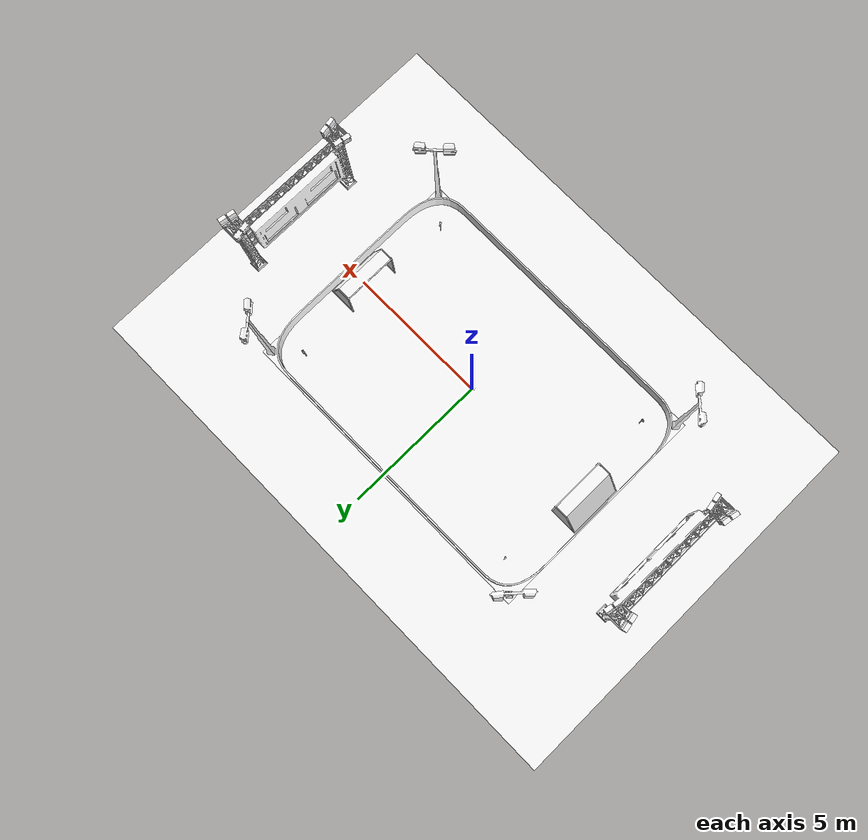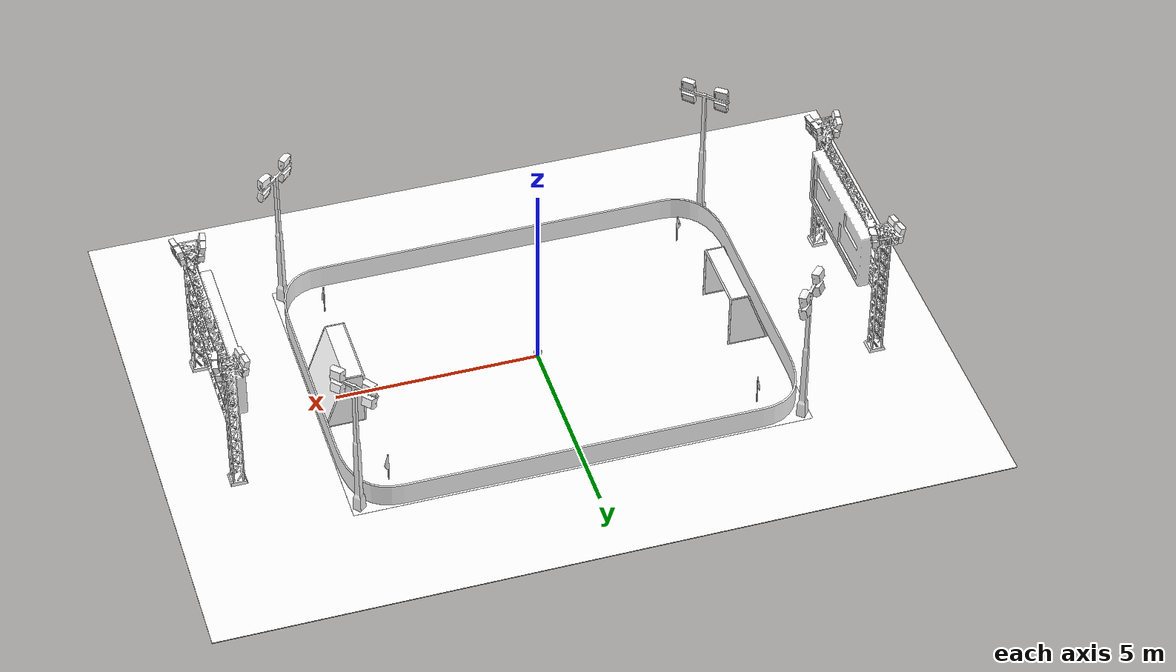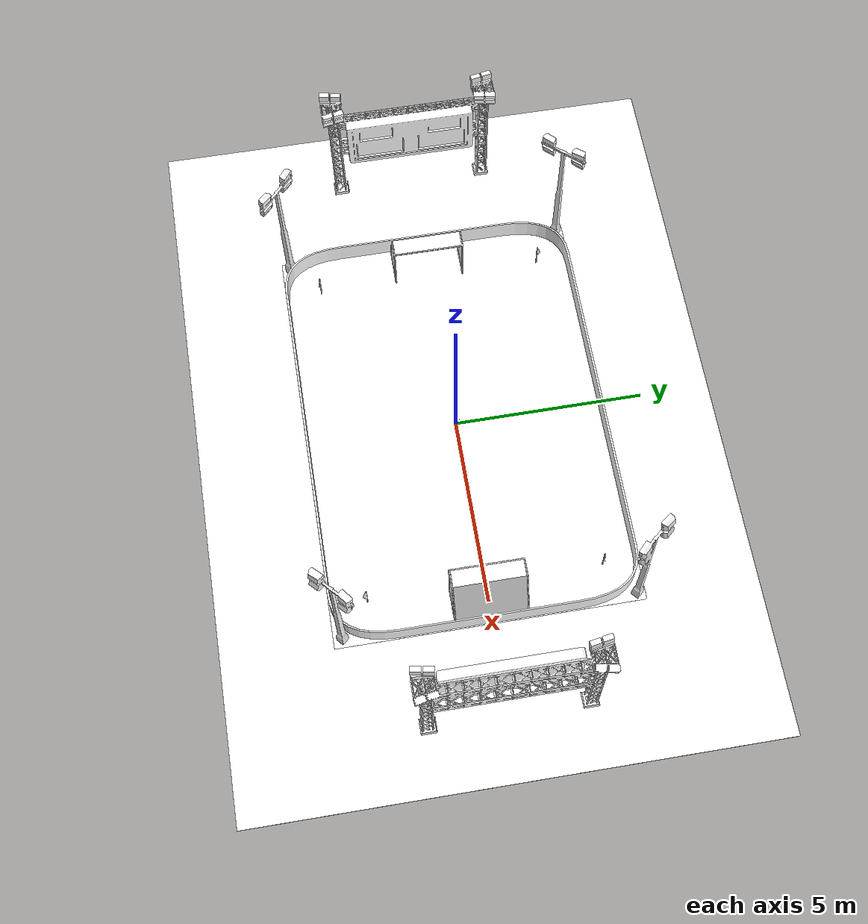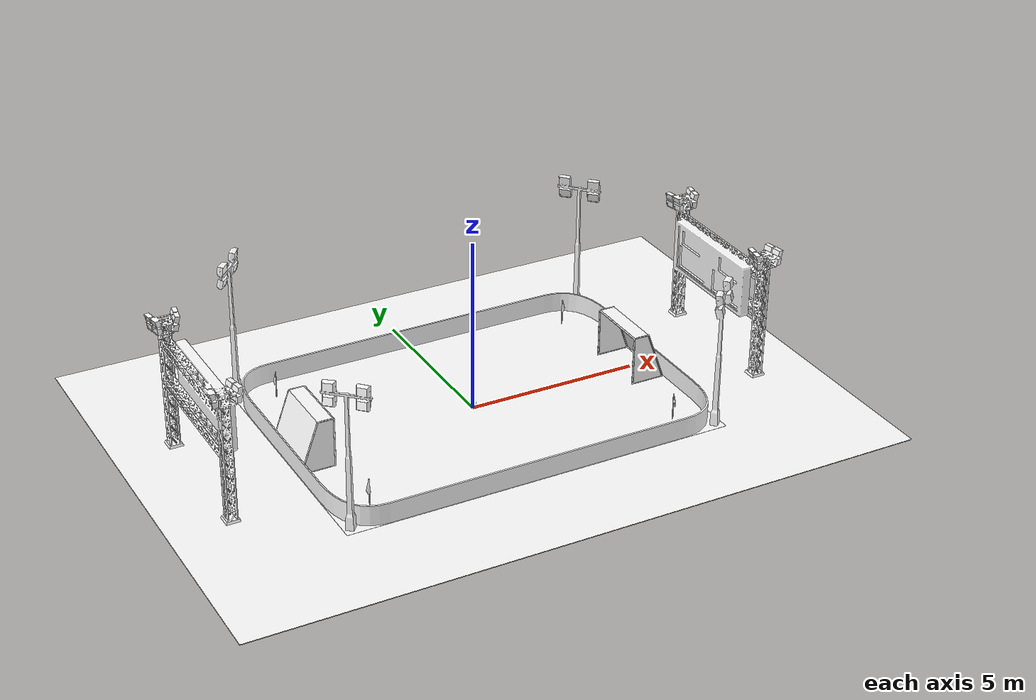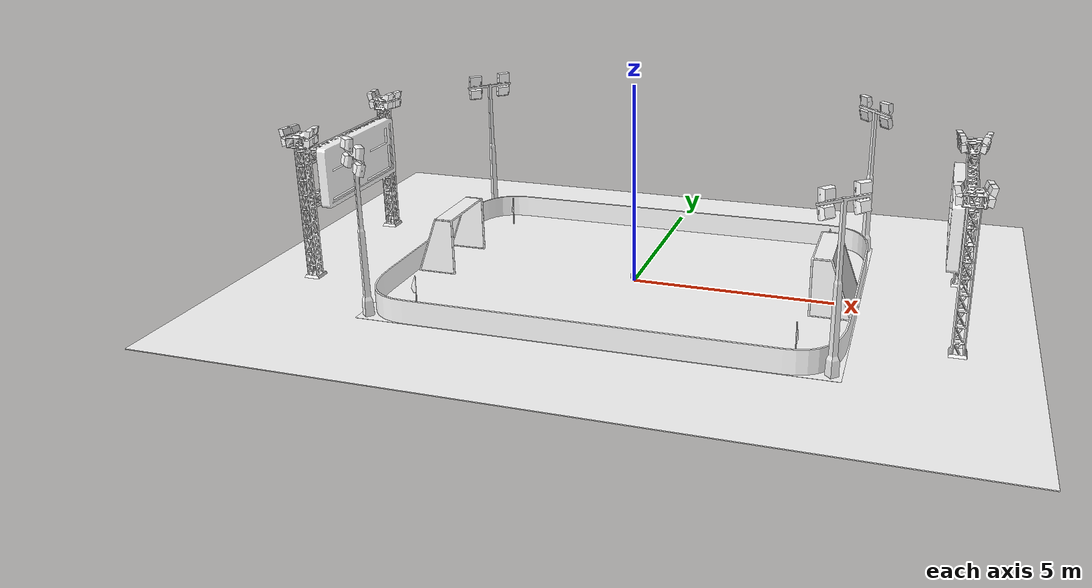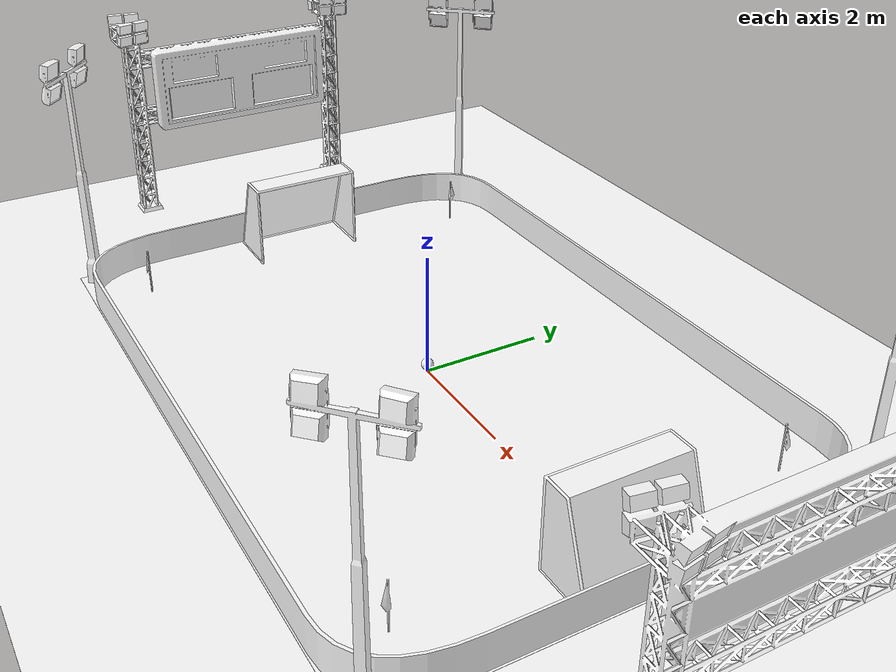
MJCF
<?xml version="1.0" encoding="utf-8"?>
<mujoco>
  <compiler autolimits="true" angle="degree" assetdir="assets" />
  <option timestep="0.005" density="1.2" viscosity="0.00002" />
  <visual>
    <headlight ambient="0.0 0.0 0.0" diffuse="0.0 0.0 0.0" specular="0.0 0.0 0.0" />
  </visual>
  <asset>
    <texture type="2d" colorspace="sRGB" name="Robot_Footballstadium" file="Robot_Footballstadium.png" />
    <texture type="2d" colorspace="sRGB" name="Robot_Floor" file="Robot_Floor.png" />
    <texture type="2d" colorspace="sRGB" name="Robot_AD" file="Robot_AD.png" />
    <texture type="2d" colorspace="sRGB" name="Robot_Football" file="Robot_Football.png" />
    <texture type="2d" colorspace="sRGB" name="Robot_Scoreboard" file="Robot_Scoreboard.png" />
    <texture type="2d" colorspace="sRGB" name="Robot_Scoreboard_emit" file="Robot_Scoreboard_emit.png" />
    <texture type="2d" colorspace="sRGB" name="Robot_NET" file="Robot_NET.png" />
    <texture type="2d" colorspace="sRGB" name="Robot_Footballstadium_emit" file="Robot_Footballstadium_emit.png" />
    <material name="Material #151" rgba="0.9999999999999999 0.9999999999999999 0.9999999999999999 1.0" reflectance="0.5" roughness="0.5" metallic="0.0">
      <layer texture="Robot_Footballstadium" role="rgb" />
    </material>
    <material name="Material #124" rgba="0.9999999999999999 0.9999999999999999 0.9999999999999999 1.0" reflectance="0.5" roughness="0.5" metallic="0.0">
      <layer texture="Robot_Floor" role="rgb" />
    </material>
    <material name="Material #147" rgba="0.9999999999999999 0.9999999999999999 0.9999999999999999 1.0" reflectance="0.5" roughness="0.5" metallic="0.0">
      <layer texture="Robot_AD" role="rgb" />
    </material>
    <material name="Material #149" rgba="0.9999999999999999 0.9999999999999999 0.9999999999999999 1.0" reflectance="0.5" roughness="0.5" metallic="0.0">
      <layer texture="Robot_Football" role="rgb" />
    </material>
    <material name="Material #127" rgba="0.9999999999999999 0.9999999999999999 0.9999999999999999 1.0" reflectance="0.5" roughness="0.5" metallic="0.0" emission="1.0 1.0 1.0 1.0" emissionintensity="2.0">
      <layer texture="Robot_Scoreboard" role="rgb" />
      <layer texture="Robot_Scoreboard_emit" role="emissive" />
    </material>
    <material name="Material #121" rgba="0.9999999999999999 0.9999999999999999 0.9999999999999999 0.8999999761581421" reflectance="0.5" roughness="0.5" metallic="0.0" texuniform="true" texrepeat="4.0 4.0">
      <layer texture="Robot_NET" role="rgba" />
    </material>
    <material name="Material #144" rgba="0.9999999999999999 0.9999999999999999 0.9999999999999999 1.0" reflectance="0.5" roughness="0.6000000238418579" metallic="0.0" emission="1.0 1.0 1.0 1.0" emissionintensity="2.0">
      <layer texture="Robot_Footballstadium" role="rgb" />
      <layer texture="Robot_Footballstadium_emit" role="emissive" />
    </material>
    <mesh name="Robot_Goal" file="Robot_Goal.obj" />
    <mesh name="Robot_Floor" file="Robot_Floor.obj" />
    <mesh name="Robot_AD" file="Robot_AD.obj" />
    <mesh name="Robot_Football" file="Robot_Football.obj" />
    <!-- Larger match ball: scaled football mesh (same asset as Robot_Football). To use exported STL instead, replace with file="Soccer_Ball_Optimized.stl" scale="1 1 1" from 球变大版本.xml. -->
    <mesh name="Soccer_Ball_Optimized" file="Robot_Football.obj" scale="1.45 1.45 1.45" />
    <mesh name="Robot_Scoreboard" file="Robot_Scoreboard.obj" />
    <mesh name="Robot_NET" file="Robot_NET.obj" />
    <mesh name="Robot_LED" file="Robot_LED.obj" />
    <mesh name="Robot_Footballstadium" file="Robot_Footballstadium.obj" />
    <mesh name="Corner_Flag" file="Corner_Flag.obj" />
  </asset>
  <worldbody>
    <geom name="pitch" pos="0 0 0" size="6 4.5 1" type="plane" contype="0" conaffinity="0" rgba="0.18 0.45 0.18 1" />
    <light name="LIT_Spot" pos="-5.257499694824219 3.562469005584717 3.8595826625823975" dir="0.6123724579811096 -0.6123724579811096 -0.4999999701976776" type="spot" diffuse="1.0 1.0 1.0" intensity="10867.14399363564" range="40.0" cutoff="42.49999833675809" innerangle="36.12499833292465" castshadow="true" mode="fixed" />
    <light name="LIT_Spot_001.004" pos="5.257500171661377 -3.562469959259033 3.8595826625823975" dir="-0.6123724579811096 0.6123724579811096 -0.4999999701976776" type="spot" diffuse="1.0 1.0 1.0" intensity="10867.14399363564" range="40.0" cutoff="42.49999833675809" innerangle="36.12499833292465" castshadow="true" mode="fixed" />
    <light name="LIT_Spot_002" pos="5.257500171661377 3.562469005584717 3.8595826625823975" dir="-0.6123724579811096 -0.6123724579811096 -0.4999999701976776" type="spot" diffuse="1.0 1.0 1.0" intensity="10867.14399363564" range="40.0" cutoff="42.49999833675809" innerangle="36.12499833292465" castshadow="true" mode="fixed" />
    <light name="LIT_Spot_003" pos="-5.257500171661377 -3.562469959259033 3.8595826625823975" dir="0.6123724579811096 0.6123724579811096 -0.4999999701976776" type="spot" diffuse="1.0 1.0 1.0" intensity="10867.14399363564" range="40.0" cutoff="42.49999833675809" innerangle="36.12499833292465" castshadow="true" mode="fixed" />
    <light name="LIT_Spot_001" pos="-7.476397514343262 1.9972071647644043 3.6919474601745605" dir="0.963287353515625 -0.2047530561685562 -0.17364822328090668" type="spot" diffuse="1.0 1.0 1.0" intensity="21734.28798727128" range="40.0" cutoff="60.000001669652114" innerangle="51.00000106157642" castshadow="true" mode="fixed" />
    <light name="LIT_Spot_001_001" pos="-7.476397514343262 -1.9972081184387207 3.6919474601745605" dir="0.963287353515625 0.2047530561685562 -0.17364822328090668" type="spot" diffuse="1.0 1.0 1.0" intensity="21734.28798727128" range="40.0" cutoff="60.000001669652114" innerangle="51.00000106157642" castshadow="true" mode="fixed" />
    <light name="LIT_Spot_001_002" pos="7.4763994216918945 1.9972071647644043 3.6919474601745605" dir="-0.963287353515625 -0.2047530561685562 -0.17364822328090668" type="spot" diffuse="1.0 1.0 1.0" intensity="21734.28798727128" range="40.0" cutoff="60.000001669652114" innerangle="51.00000106157642" castshadow="true" mode="fixed" />
    <light name="LIT_Spot_001_003" pos="7.4763994216918945 -1.9972081184387207 3.6919474601745605" dir="-0.963287353515625 0.2047530561685562 -0.17364822328090668" type="spot" diffuse="1.0 1.0 1.0" intensity="21734.28798727128" range="40.0" cutoff="60.000001669652114" innerangle="51.00000106157642" castshadow="true" mode="fixed" />
    <geom name="GEO_Robot_Goal" pos="0.0 0.0 0.0" quat="1.0 0.0 0.0 0.0" type="mesh" mesh="Robot_Goal" material="Material #151" contype="0" conaffinity="0" />
    <geom name="GEO_Robot_Floor" pos="0.0 0.0 0.0" quat="1.0 0.0 0.0 0.0" type="mesh" mesh="Robot_Floor" material="Material #124" contype="0" conaffinity="0" />
    <geom name="GEO_Robot_AD" pos="0.0 0.0 0.0" quat="1.0 0.0 0.0 0.0" type="mesh" mesh="Robot_AD" material="Material #147" contype="0" conaffinity="0" />
    <geom name="GEO_Robot_Scoreboard" pos="0.0 0.0 0.0" quat="1.0 0.0 0.0 0.0" type="mesh" mesh="Robot_Scoreboard" material="Material #127" contype="0" conaffinity="0" />
    <geom name="GEO_Robot_NET" pos="0.0 0.0 0.0" quat="1.0 0.0 0.0 0.0" type="mesh" mesh="Robot_NET" material="Material #121" contype="0" conaffinity="0" />
    <geom name="GEO_Robot_LED" pos="0.0 0.0 0.0" quat="1.0 0.0 0.0 0.0" type="mesh" mesh="Robot_LED" material="Material #144" contype="0" conaffinity="0" />
    <geom name="GEO_Robot_Footballstadium" pos="0.0 0.0 0.0" quat="1.0 0.0 0.0 0.0" type="mesh" mesh="Robot_Footballstadium" material="Material #144" contype="0" conaffinity="0" />
    <geom name="COL_Collider" pos="0.0 0.0 0.014369922690093517" quat="1.0 0.0 0.0 0.0" type="box" size="6.0 4.5 0.009999999776482582" group="3" />
    <geom name="COL_Cube" pos="-0.013669848442077637 3.847886562347412 0.29789090156555176" quat="1.0 0.0 0.0 0.0" type="box" size="4.367038249969482 0.025640010833740234 0.3017556667327881" group="3" />
    <geom name="COL_Cube_001" pos="0.0035172700881958008 -3.9452831745147705 0.29848408699035645" quat="1.0 0.0 0.0 0.0" type="box" size="4.367038249969482 0.025640010833740234 0.3017556667327881" group="3" />
    <geom name="COL_Cube_002" pos="5.543219566345215 -0.048734188079833984 0.2978677749633789" quat="1.0 0.0 0.0 0.0" type="box" size="0.018661975860595703 2.274294376373291 0.3017556667327881" group="3" />
    <geom name="COL_Cube_003" pos="-5.553401947021484 -0.048734188079833984 0.2978677749633789" quat="1.0 0.0 0.0 0.0" type="box" size="0.018661975860595703 2.274294376373291 0.3017556667327881" group="3" />
    <geom name="COL_Cube_004" pos="5.505679130554199 2.580112934112549 0.2978910207748413" quat="0.998615026473999 0.0 0.0 0.05261220782995224" type="box" size="0.018661975860595703 0.3584986925125122 0.3017556667327881" group="3" />
    <geom name="COL_Cube_005" pos="5.3816351890563965 3.1466293334960938 0.2978910207748413" quat="0.9813403487205505 0.0 0.0 0.19227883219718933" type="box" size="0.018661973997950554 0.23225754499435425 0.3017556667327881" group="3" />
    <geom name="COL_Cube_006" pos="4.996574401855469 3.657963752746582 0.2978910207748413" quat="0.8841893672943115 0.0 0.0 0.4671286642551422" type="box" size="0.018661975860595703 0.1792493462562561 0.3017556667327881" group="3" />
    <geom name="COL_Cube_007" pos="4.606194972991943 3.7983238697052 0.2978910207748413" quat="0.7639055848121643 0.0 0.0 0.6453279852867126" type="box" size="0.018661973997950554 0.25326916575431824 0.3017556667327881" group="3" />
    <geom name="COL_Cube_008" pos="5.218405246734619 3.4592020511627197 0.2978910207748413" quat="0.9469920992851257 0.0 0.0 0.32125675678253174" type="box" size="0.018661977723240852 0.12827935814857483 0.3017556667327881" group="3" />
    <geom name="COL_Cube_009" pos="-5.515832901000977 -2.6775097846984863 0.2984839677810669" quat="0.05261237174272537 -0.0 -0.0 -0.998615026473999" type="box" size="0.018661973997950554 0.3584986627101898 0.3017556667327881" group="3" />
    <geom name="COL_Cube_010" pos="-5.391788005828857 -3.2440261840820312 0.2984839677810669" quat="0.1922789067029953 -0.0 -0.0 -0.9813402891159058" type="box" size="0.018661975860595703 0.23225755989551544 0.3017556667327881" group="3" />
    <geom name="COL_Cube_011" pos="-5.006728172302246 -3.7553606033325195 0.2984839677810669" quat="0.4671289324760437 -0.0 -0.0 -0.884189248085022" type="box" size="0.018661973997950554 0.1792493313550949 0.3017556667327881" group="3" />
    <geom name="COL_Cube_012" pos="-4.616347789764404 -3.8957207202911377 0.2984839677810669" quat="0.6453282237052917 -0.0 -0.0 -0.76390540599823" type="box" size="0.018661973997950554 0.25326916575431824 0.3017556667327881" group="3" />
    <geom name="COL_Cube_013" pos="-5.22855806350708 -3.5565989017486572 0.2984839677810669" quat="0.3212569057941437 -0.0 -0.0 -0.946992039680481" type="box" size="0.018661977723240852 0.12827935814857483 0.3017556667327881" group="3" />
    <geom name="COL_Cube_014" pos="5.515832901000977 -2.6775097846984863 0.2984839677810669" quat="0.05261477455496788 0.0 0.0 0.9986149072647095" type="box" size="0.018661975860595703 0.3584986925125122 0.3017556667327881" group="3" />
    <geom name="COL_Cube_015" pos="5.391788005828857 -3.2440261840820312 0.2984839677810669" quat="0.19228225946426392 0.0 0.0 0.981339693069458" type="box" size="0.018661973997950554 0.23225754499435425 0.3017556667327881" group="3" />
    <geom name="COL_Cube_016" pos="5.006728172302246 -3.7553606033325195 0.2984839677810669" quat="0.46712756156921387 0.0 0.0 0.8841899633407593" type="box" size="0.018661973997950554 0.1792493313550949 0.3017556667327881" group="3" />
    <geom name="COL_Cube_017" pos="4.616347789764404 -3.8957207202911377 0.2984839677810669" quat="0.6453310251235962 0.0 0.0 0.763903021812439" type="box" size="0.018661973997950554 0.25326916575431824 0.3017556667327881" group="3" />
    <geom name="COL_Cube_018" pos="5.22855806350708 -3.5565989017486572 0.2984839677810669" quat="0.321257621049881 0.0 0.0 0.9469918608665466" type="box" size="0.018661977723240852 0.12827935814857483 0.3017556667327881" group="3" />
    <geom name="COL_Cube_019" pos="-5.51569128036499 2.580108165740967 0.2984468936920166" quat="0.9986149072647095 0.0 0.0 -0.052614618092775345" type="box" size="0.018661973997950554 0.3584986627101898 0.3017556667327881" group="3" />
    <geom name="COL_Cube_020" pos="-5.3916473388671875 3.1466245651245117 0.2984468936920166" quat="0.981339693069458 0.0 0.0 -0.1922820806503296" type="box" size="0.018661975860595703 0.23225755989551544 0.3017556667327881" group="3" />
    <geom name="COL_Cube_021" pos="-5.00658655166626 3.657958984375 0.2984468936920166" quat="0.884190022945404 0.0 0.0 -0.46712741255760193" type="box" size="0.018661973997950554 0.1792493313550949 0.3017556667327881" group="3" />
    <geom name="COL_Cube_022" pos="-4.616207122802734 3.798319101333618 0.2984468936920166" quat="0.7639030814170837 0.0 0.0 -0.6453310251235962" type="box" size="0.018661972135305405 0.25326913595199585 0.3017556667327881" group="3" />
    <geom name="COL_Cube_023" pos="-5.22841739654541 3.4591972827911377 0.2984468936920166" quat="0.9469918608665466 0.0 0.0 -0.32125750184059143" type="box" size="0.018661977723240852 0.12827935814857483 0.3017556667327881" group="3" />
    <geom name="COL_Cube_024" pos="5.0021514892578125 -0.9282311797142029 0.7387799024581909" quat="1.0 0.0 0.0 0.0" type="box" size="0.507981538772583 0.019494295120239258 0.7309890985488892" group="3" />
    <geom name="COL_Cube_025" pos="5.0021514892578125 0.928230881690979 0.7387799024581909" quat="1.0 0.0 0.0 0.0" type="box" size="0.507981538772583 0.019494295120239258 0.7309890985488892" group="3" />
    <geom name="COL_Cube_026" pos="4.733741760253906 -2.980232238769531e-07 1.44972562789917" quat="1.0 0.0 0.0 0.0" type="box" size="0.23957204818725586 0.9087367057800293 0.020043373107910156" group="3" />
    <geom name="COL_Cube_027" pos="4.733741760253906 -1.7881393432617188e-07 1.44972562789917" quat="1.0 0.0 0.0 0.0" type="box" size="0.23957204818725586 0.9087367057800293 0.020043373107910156" group="3" />
    <geom name="COL_Cube_028" pos="5.226289749145508 -8.377482885180143e-08 0.742372989654541" quat="0.8186747431755066 0.0 0.574257493019104 0.0" type="box" size="0.7695609331130981 0.9087364673614502 0.020043373107910156" group="3" />
    <geom name="COL_Cube_029" pos="-5.0021514892578125 0.9282308220863342 0.7387799024581909" quat="1.6292068494294654e-07 -0.0 -0.0 -1.0" type="box" size="0.507981538772583 0.019494295120239258 0.7309890985488892" group="3" />
    <geom name="COL_Cube_030" pos="-5.0021514892578125 -0.9282313585281372 0.7387799024581909" quat="1.6292068494294654e-07 -0.0 -0.0 -1.0" type="box" size="0.507981538772583 0.019494295120239258 0.7309890985488892" group="3" />
    <geom name="COL_Cube_031" pos="-4.7337422370910645 0.0 1.44972562789917" quat="1.6292068494294654e-07 -0.0 -0.0 -1.0" type="box" size="0.23957204818725586 0.9087367057800293 0.020043373107910156" group="3" />
    <geom name="COL_Cube_032" pos="-5.226289749145508 -3.7312193512661906e-07 0.742372989654541" quat="2.3097264545413054e-07 0.5742577314376831 1.620152971781863e-07 -0.818674623966217" type="box" size="0.7695608735084534 0.9087364673614502 0.020043371245265007" group="3" />
    <body name="ball" pos="2.67608243120776e-07 -3.9774130300429533e-07 0.133" quat="1.0 0.0 0.0 0.0">
      <joint name="ball-root" pos="0.0 0.0 0.0" axis="0.0 0.0 1.0" type="free" />
      <geom name="ball" pos="0.0 0.0 0.0" quat="1.0 0.0 0.0 0.0" type="mesh" mesh="Soccer_Ball_Optimized" material="Material #149" />
    </body>
    <body name="LNK_Link" pos="4.508542537689209 -3.0104482173919678 0.024369925260543823" quat="1.0 0.0 0.0 0.0">
      <joint name="JNT_Joint_001" pos="0.0 0.0 0.0" axis="0.0 -1.0 -4.371138828673793e-08" type="hinge" range="-0.009999999776482582 0.009999999776482582" limited="true" />
      <joint name="JNT_Joint_001_000" pos="0.0 0.0 0.0" axis="1.0 4.371138828673793e-08 -4.371138828673793e-08" type="hinge" range="-0.009999999776482582 0.009999999776482582" limited="true" />
      <geom name="GEO_V_CornerFlag" pos="0.0 0.0 0.0" quat="0.5 0.5 -0.5 -0.5" type="mesh" mesh="Corner_Flag" material="Material #144" contype="0" conaffinity="0" />
      <geom name="COL_Collider_001_001" pos="-2.384185791015625e-06 -1.6689300537109375e-06 0.3930816054344177" quat="1.0 -3.774895063202166e-08 0.0 0.0" type="capsule" size="0.019999999552965164 0.36219531297683716" group="3" />
    </body>
    <body name="LNK_Link_001" pos="4.508542537689209 3.0104498863220215 0.024369925260543823" quat="1.0 0.0 0.0 0.0">
      <joint name="JNT_Joint_001_001" pos="0.0 0.0 0.0" axis="1.0 4.371138828673793e-08 -4.371138828673793e-08" type="hinge" range="-0.009999999776482582 0.009999999776482582" limited="true" />
      <joint name="JNT_Joint_001_006" pos="0.0 0.0 0.0" axis="0.0 -1.0 -4.371138828673793e-08" type="hinge" range="-0.009999999776482582 0.009999999776482582" limited="true" />
      <geom name="GEO_V_CornerFlag_001" pos="0.0 0.0 0.0" quat="0.7071067690849304 0.7071067690849304 0.0 0.0" type="mesh" mesh="Corner_Flag" material="Material #144" contype="0" conaffinity="0" />
      <geom name="COL_Collider_001" pos="0.0 0.0 0.3930816054344177" quat="1.0 -3.774895063202166e-08 0.0 0.0" type="capsule" size="0.019999999552965164 0.36219531297683716" group="3" />
    </body>
    <body name="LNK_Link_002" pos="-4.508540153503418 -3.0104482173919678 0.024369925260543823" quat="1.0 0.0 0.0 0.0">
      <joint name="JNT_Joint_001_002" pos="0.0 0.0 0.0" axis="0.0 -1.0 -4.371138828673793e-08" type="hinge" range="-0.009999999776482582 0.009999999776482582" limited="true" />
      <joint name="JNT_Joint_001_004" pos="0.0 0.0 0.0" axis="1.0 4.371138828673793e-08 -4.371138828673793e-08" type="hinge" range="-0.009999999776482582 0.009999999776482582" limited="true" />
      <geom name="GEO_V_CornerFlag_002" pos="0.0 0.0 0.0" quat="1.1520232590100932e-07 1.1520231879558196e-07 -0.7071067690849304 -0.7071067690849304" type="mesh" mesh="Corner_Flag" material="Material #144" contype="0" conaffinity="0" />
      <geom name="COL_Collider_001_002" pos="0.0 -1.6689300537109375e-06 0.3930816054344177" quat="1.0 -3.774895063202166e-08 0.0 0.0" type="capsule" size="0.019999999552965164 0.36219531297683716" group="3" />
    </body>
    <body name="LNK_Link_003" pos="-4.508540153503418 3.0104498863220215 0.024369925260543823" quat="1.0 0.0 0.0 0.0">
      <joint name="JNT_Joint_001_003" pos="0.0 0.0 0.0" axis="1.0 4.371138828673793e-08 -4.371138828673793e-08" type="hinge" range="-0.009999999776482582 0.009999999776482582" limited="true" />
      <joint name="JNT_Joint_001_005" pos="0.0 0.0 0.0" axis="0.0 -1.0 -4.371138828673793e-08" type="hinge" range="-0.009999999776482582 0.009999999776482582" limited="true" />
      <geom name="GEO_V_CornerFlag_003" pos="0.0 0.0 0.0" quat="0.5000000596046448 0.5 0.5 0.5" type="mesh" mesh="Corner_Flag" material="Material #144" contype="0" conaffinity="0" />
      <geom name="COL_Collider_001_003" pos="0.0 0.0 0.3930816054344177" quat="1.0 -3.774895063202166e-08 0.0 0.0" type="capsule" size="0.019999999552965164 0.36219531297683716" group="3" />
    </body>
  </worldbody>
</mujoco>
